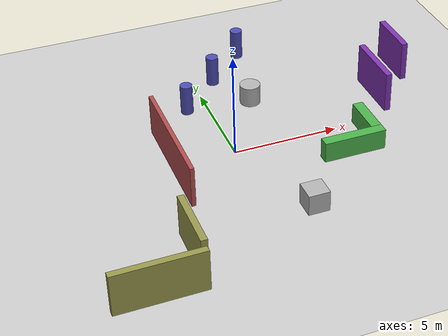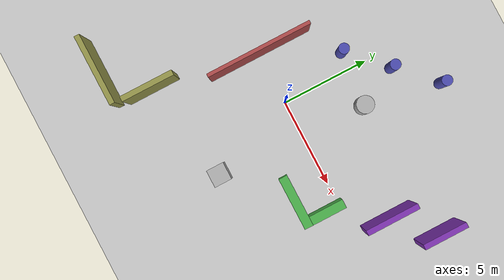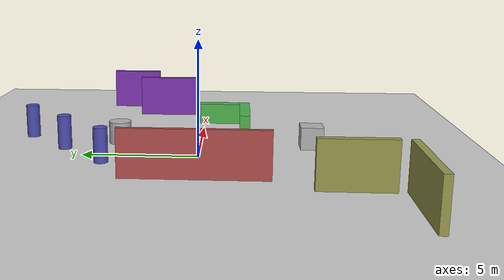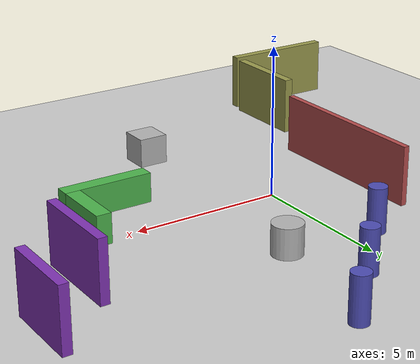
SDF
<sdf version='1.10'>
  <world name='empty'>
    <physics name='1ms' type='ignored'>
      <max_step_size>0.1</max_step_size>
      <real_time_factor>1</real_time_factor>
      <real_time_update_rate>50</real_time_update_rate>
    </physics>
    <plugin name='gz::sim::systems::Physics' filename='gz-sim-physics-system'/>
    <plugin name='gz::sim::systems::UserCommands' filename='gz-sim-user-commands-system'/>
    <plugin name='gz::sim::systems::SceneBroadcaster' filename='gz-sim-scene-broadcaster-system'/>
    <plugin name='gz::sim::systems::Imu' filename='gz-sim-imu-system'/>
    <plugin name='gz::sim::systems::Sensors' filename='gz-sim-sensors-system'>
      <render_engine>ogre2</render_engine>
    </plugin>
    <plugin name='gz::sim::systems::Contact' filename='gz-sim-contact-system'/>
    <gravity>0 0 -9.8000000000000007</gravity>
    <magnetic_field>5.5644999999999998e-06 2.2875799999999999e-05 -4.2388400000000002e-05</magnetic_field>
    <atmosphere type='adiabatic'/>
    <scene>
      <ambient>0.400000006 0.400000006 0.400000006 1</ambient>
      <background>0.699999988 0.699999988 0.699999988 1</background>
      <shadows>true</shadows>
    </scene>
    <model name='ground_plane'>
      <static>true</static>
      <link name='link'>
        <collision name='collision'>
          <geometry>
            <plane>
              <normal>0 0 1</normal>
              <size>100 100</size>
            </plane>
          </geometry>
          <surface>
            <friction>
              <ode/>
            </friction>
            <bounce/>
            <contact/>
          </surface>
        </collision>
        <visual name='visual'>
          <geometry>
            <plane>
              <normal>0 0 1</normal>
              <size>100 100</size>
            </plane>
          </geometry>
          <material>
            <ambient>0.800000012 0.800000012 0.800000012 1</ambient>
            <diffuse>0.800000012 0.800000012 0.800000012 1</diffuse>
            <specular>0.800000012 0.800000012 0.800000012 1</specular>
          </material>
        </visual>
        <pose>0 0 0 0 0 0</pose>
        <inertial>
          <pose>0 0 0 0 0 0</pose>
          <mass>1</mass>
          <inertia>
            <ixx>1</ixx>
            <ixy>0</ixy>
            <ixz>0</ixz>
            <iyy>1</iyy>
            <iyz>0</iyz>
            <izz>1</izz>
          </inertia>
        </inertial>
        <enable_wind>false</enable_wind>
      </link>
      <pose>0 0 0 0 0 0</pose>
      <self_collide>false</self_collide>
    </model>
    <model name='box'>
      <pose>1.8029219467110664 -4.9402323017846799 0.49999999990199806 6.2287739151293738e-22 9.3279666454713669e-22 -3.6315533669320137e-22</pose>
      <link name='box_link'>
        <inertial>
          <inertia>
            <ixx>16.666</ixx>
            <ixy>0</ixy>
            <ixz>0</ixz>
            <iyy>16.666</iyy>
            <iyz>0</iyz>
            <izz>16.666</izz>
          </inertia>
          <mass>100</mass>
          <pose>0 0 0 0 0 0</pose>
        </inertial>
        <collision name='box_collision'>
          <geometry>
            <box>
              <size>1 1 1</size>
            </box>
          </geometry>
          <surface>
            <friction>
              <ode/>
            </friction>
            <bounce/>
            <contact/>
          </surface>
        </collision>
        <visual name='box_visual'>
          <geometry>
            <box>
              <size>1 1 1</size>
            </box>
          </geometry>
          <material>
            <ambient>0.300000012 0.300000012 0.300000012 1</ambient>
            <diffuse>0.699999988 0.699999988 0.699999988 1</diffuse>
            <specular>1 1 1 1</specular>
          </material>
        </visual>
        <pose>0 0 0 0 0 0</pose>
        <enable_wind>false</enable_wind>
      </link>
      <static>false</static>
      <self_collide>false</self_collide>
    </model>
    <model name='cylinder'>
      <pose>2.1278173043812618 3.7029515542140965 0.49999942638036005 2.4289046005190011e-20 1.5754678275059134e-20 -9.0169543863959e-21</pose>
      <link name='cylinder_link'>
        <inertial>
          <inertia>
            <ixx>14.58</ixx>
            <ixy>0</ixy>
            <ixz>0</ixz>
            <iyy>14.58</iyy>
            <iyz>0</iyz>
            <izz>12.5</izz>
          </inertia>
          <mass>100</mass>
          <pose>0 0 0 0 0 0</pose>
        </inertial>
        <collision name='cylinder_collision'>
          <geometry>
            <cylinder>
              <radius>0.5</radius>
              <length>1</length>
            </cylinder>
          </geometry>
          <surface>
            <friction>
              <ode/>
            </friction>
            <bounce/>
            <contact/>
          </surface>
        </collision>
        <visual name='cylinder_visual'>
          <geometry>
            <cylinder>
              <radius>0.5</radius>
              <length>1</length>
            </cylinder>
          </geometry>
          <material>
            <ambient>0.300000012 0.300000012 0.300000012 1</ambient>
            <diffuse>0.699999988 0.699999988 0.699999988 1</diffuse>
            <specular>1 1 1 1</specular>
          </material>
        </visual>
        <pose>0 0 0 0 0 0</pose>
        <enable_wind>false</enable_wind>
      </link>
      <static>false</static>
      <self_collide>false</self_collide>
    </model>

    <!-- Wall obstacle creating a corridor -->
    <model name='wall1'>
      <pose>-3 0 1 0 0 0</pose>
      <link name='wall1_link'>
        <inertial>
          <inertia>
            <ixx>100</ixx>
            <ixy>0</ixy>
            <ixz>0</ixz>
            <iyy>100</iyy>
            <iyz>0</iyz>
            <izz>100</izz>
          </inertia>
          <mass>500</mass>
          <pose>0 0 0 0 0 0</pose>
        </inertial>
        <collision name='wall1_collision'>
          <geometry>
            <box>
              <size>0.2 6 2</size>
            </box>
          </geometry>
          <surface>
            <friction>
              <ode/>
            </friction>
            <bounce/>
            <contact/>
          </surface>
        </collision>
        <visual name='wall1_visual'>
          <geometry>
            <box>
              <size>0.2 6 2</size>
            </box>
          </geometry>
          <material>
            <ambient>0.7 0.3 0.3 1</ambient>
            <diffuse>0.7 0.3 0.3 1</diffuse>
            <specular>1 1 1 1</specular>
          </material>
        </visual>
        <pose>0 0 0 0 0 0</pose>
        <enable_wind>false</enable_wind>
      </link>
      <static>true</static>
      <self_collide>false</self_collide>
    </model>

    <!-- L-shaped obstacle -->
    <model name='L_obstacle'>
      <pose>5 -2 0.5 0 0 0</pose>
      <link name='L_obstacle_link'>
        <inertial>
          <inertia>
            <ixx>50</ixx>
            <ixy>0</ixy>
            <ixz>0</ixz>
            <iyy>50</iyy>
            <iyz>0</iyz>
            <izz>50</izz>
          </inertia>
          <mass>200</mass>
          <pose>0 0 0 0 0 0</pose>
        </inertial>
        <collision name='L_obstacle_collision'>
          <geometry>
            <box>
              <size>3 0.5 1</size>
            </box>
          </geometry>
          <surface>
            <friction>
              <ode/>
            </friction>
            <bounce/>
            <contact/>
          </surface>
        </collision>
        <visual name='L_obstacle_visual'>
          <geometry>
            <box>
              <size>3 0.5 1</size>
            </box>
          </geometry>
          <material>
            <ambient>0.3 0.7 0.3 1</ambient>
            <diffuse>0.3 0.7 0.3 1</diffuse>
            <specular>1 1 1 1</specular>
          </material>
        </visual>
        <pose>0 0 0 0 0 0</pose>
        <enable_wind>false</enable_wind>
      </link>
      <static>true</static>
      <self_collide>false</self_collide>
    </model>

    <!-- L-shaped obstacle part 2 -->
    <model name='L_obstacle2'>
      <pose>6.25 -0.75 0.5 0 0 0</pose>
      <link name='L_obstacle2_link'>
        <inertial>
          <inertia>
            <ixx>30</ixx>
            <ixy>0</ixy>
            <ixz>0</ixz>
            <iyy>30</iyy>
            <iyz>0</iyz>
            <izz>30</izz>
          </inertia>
          <mass>150</mass>
          <pose>0 0 0 0 0 0</pose>
        </inertial>
        <collision name='L_obstacle2_collision'>
          <geometry>
            <box>
              <size>0.5 2 1</size>
            </box>
          </geometry>
          <surface>
            <friction>
              <ode/>
            </friction>
            <bounce/>
            <contact/>
          </surface>
        </collision>
        <visual name='L_obstacle2_visual'>
          <geometry>
            <box>
              <size>0.5 2 1</size>
            </box>
          </geometry>
          <material>
            <ambient>0.3 0.7 0.3 1</ambient>
            <diffuse>0.3 0.7 0.3 1</diffuse>
            <specular>1 1 1 1</specular>
          </material>
        </visual>
        <pose>0 0 0 0 0 0</pose>
        <enable_wind>false</enable_wind>
      </link>
      <static>true</static>
      <self_collide>false</self_collide>
    </model>

    <!-- Scattered pillars creating a slalom course -->
    <model name='pillar1'>
      <pose>-1 4 0.75 0 0 0</pose>
      <link name='pillar1_link'>
        <inertial>
          <inertia>
            <ixx>25</ixx>
            <ixy>0</ixy>
            <ixz>0</ixz>
            <iyy>25</iyy>
            <iyz>0</iyz>
            <izz>5</izz>
          </inertia>
          <mass>150</mass>
          <pose>0 0 0 0 0 0</pose>
        </inertial>
        <collision name='pillar1_collision'>
          <geometry>
            <cylinder>
              <radius>0.3</radius>
              <length>1.5</length>
            </cylinder>
          </geometry>
          <surface>
            <friction>
              <ode/>
            </friction>
            <bounce/>
            <contact/>
          </surface>
        </collision>
        <visual name='pillar1_visual'>
          <geometry>
            <cylinder>
              <radius>0.3</radius>
              <length>1.5</length>
            </cylinder>
          </geometry>
          <material>
            <ambient>0.3 0.3 0.7 1</ambient>
            <diffuse>0.3 0.3 0.7 1</diffuse>
            <specular>1 1 1 1</specular>
          </material>
        </visual>
        <pose>0 0 0 0 0 0</pose>
        <enable_wind>false</enable_wind>
      </link>
      <static>true</static>
      <self_collide>false</self_collide>
    </model>

    <model name='pillar2'>
      <pose>1 6 0.75 0 0 0</pose>
      <link name='pillar2_link'>
        <inertial>
          <inertia>
            <ixx>25</ixx>
            <ixy>0</ixy>
            <ixz>0</ixz>
            <iyy>25</iyy>
            <iyz>0</iyz>
            <izz>5</izz>
          </inertia>
          <mass>150</mass>
          <pose>0 0 0 0 0 0</pose>
        </inertial>
        <collision name='pillar2_collision'>
          <geometry>
            <cylinder>
              <radius>0.3</radius>
              <length>1.5</length>
            </cylinder>
          </geometry>
          <surface>
            <friction>
              <ode/>
            </friction>
            <bounce/>
            <contact/>
          </surface>
        </collision>
        <visual name='pillar2_visual'>
          <geometry>
            <cylinder>
              <radius>0.3</radius>
              <length>1.5</length>
            </cylinder>
          </geometry>
          <material>
            <ambient>0.3 0.3 0.7 1</ambient>
            <diffuse>0.3 0.3 0.7 1</diffuse>
            <specular>1 1 1 1</specular>
          </material>
        </visual>
        <pose>0 0 0 0 0 0</pose>
        <enable_wind>false</enable_wind>
      </link>
      <static>true</static>
      <self_collide>false</self_collide>
    </model>

    <model name='pillar3'>
      <pose>3 8 0.75 0 0 0</pose>
      <link name='pillar3_link'>
        <inertial>
          <inertia>
            <ixx>25</ixx>
            <ixy>0</ixy>
            <ixz>0</ixz>
            <iyy>25</iyy>
            <iyz>0</iyz>
            <izz>5</izz>
          </inertia>
          <mass>150</mass>
          <pose>0 0 0 0 0 0</pose>
        </inertial>
        <collision name='pillar3_collision'>
          <geometry>
            <cylinder>
              <radius>0.3</radius>
              <length>1.5</length>
            </cylinder>
          </geometry>
          <surface>
            <friction>
              <ode/>
            </friction>
            <bounce/>
            <contact/>
          </surface>
        </collision>
        <visual name='pillar3_visual'>
          <geometry>
            <cylinder>
              <radius>0.3</radius>
              <length>1.5</length>
            </cylinder>
          </geometry>
          <material>
            <ambient>0.3 0.3 0.7 1</ambient>
            <diffuse>0.3 0.3 0.7 1</diffuse>
            <specular>1 1 1 1</specular>
          </material>
        </visual>
        <pose>0 0 0 0 0 0</pose>
        <enable_wind>false</enable_wind>
      </link>
      <static>true</static>
      <self_collide>false</self_collide>
    </model>

    <!-- Large rectangular obstacles creating rooms -->
    <model name='room_wall1'>
      <pose>-6 -8 1 0 0 0</pose>
      <link name='room_wall1_link'>
        <inertial>
          <inertia>
            <ixx>200</ixx>
            <ixy>0</ixy>
            <ixz>0</ixz>
            <iyy>200</iyy>
            <iyz>0</iyz>
            <izz>200</izz>
          </inertia>
          <mass>800</mass>
          <pose>0 0 0 0 0 0</pose>
        </inertial>
        <collision name='room_wall1_collision'>
          <geometry>
            <box>
              <size>4 0.3 2</size>
            </box>
          </geometry>
          <surface>
            <friction>
              <ode/>
            </friction>
            <bounce/>
            <contact/>
          </surface>
        </collision>
        <visual name='room_wall1_visual'>
          <geometry>
            <box>
              <size>4 0.3 2</size>
            </box>
          </geometry>
          <material>
            <ambient>0.6 0.6 0.3 1</ambient>
            <diffuse>0.6 0.6 0.3 1</diffuse>
            <specular>1 1 1 1</specular>
          </material>
        </visual>
        <pose>0 0 0 0 0 0</pose>
        <enable_wind>false</enable_wind>
      </link>
      <static>true</static>
      <self_collide>false</self_collide>
    </model>

    <model name='room_wall2'>
      <pose>-4 -6 1 0 0 1.57</pose>
      <link name='room_wall2_link'>
        <inertial>
          <inertia>
            <ixx>100</ixx>
            <ixy>0</ixy>
            <ixz>0</ixz>
            <iyy>100</iyy>
            <iyz>0</iyz>
            <izz>100</izz>
          </inertia>
          <mass>600</mass>
          <pose>0 0 0 0 0 0</pose>
        </inertial>
        <collision name='room_wall2_collision'>
          <geometry>
            <box>
              <size>3 0.3 2</size>
            </box>
          </geometry>
          <surface>
            <friction>
              <ode/>
            </friction>
            <bounce/>
            <contact/>
          </surface>
        </collision>
        <visual name='room_wall2_visual'>
          <geometry>
            <box>
              <size>3 0.3 2</size>
            </box>
          </geometry>
          <material>
            <ambient>0.6 0.6 0.3 1</ambient>
            <diffuse>0.6 0.6 0.3 1</diffuse>
            <specular>1 1 1 1</specular>
          </material>
        </visual>
        <pose>0 0 0 0 0 0</pose>
        <enable_wind>false</enable_wind>
      </link>
      <static>true</static>
      <self_collide>false</self_collide>
    </model>

    <!-- Maze-like narrow passage -->
    <model name='maze_wall1'>
      <pose>8 2 1 0 0 0</pose>
      <link name='maze_wall1_link'>
        <inertial>
          <inertia>
            <ixx>80</ixx>
            <ixy>0</ixy>
            <ixz>0</ixz>
            <iyy>80</iyy>
            <iyz>0</iyz>
            <izz>80</izz>
          </inertia>
          <mass>400</mass>
          <pose>0 0 0 0 0 0</pose>
        </inertial>
        <collision name='maze_wall1_collision'>
          <geometry>
            <box>
              <size>0.3 3 2</size>
            </box>
          </geometry>
          <surface>
            <friction>
              <ode/>
            </friction>
            <bounce/>
            <contact/>
          </surface>
        </collision>
        <visual name='maze_wall1_visual'>
          <geometry>
            <box>
              <size>0.3 3 2</size>
            </box>
          </geometry>
          <material>
            <ambient>0.5 0.2 0.7 1</ambient>
            <diffuse>0.5 0.2 0.7 1</diffuse>
            <specular>1 1 1 1</specular>
          </material>
        </visual>
        <pose>0 0 0 0 0 0</pose>
        <enable_wind>false</enable_wind>
      </link>
      <static>true</static>
      <self_collide>false</self_collide>
    </model>

    <model name='maze_wall2'>
      <pose>10 4 1 0 0 1.57</pose>
      <link name='maze_wall2_link'>
        <inertial>
          <inertia>
            <ixx>60</ixx>
            <ixy>0</ixy>
            <ixz>0</ixz>
            <iyy>60</iyy>
            <iyz>0</iyz>
            <izz>60</izz>
          </inertia>
          <mass>300</mass>
          <pose>0 0 0 0 0 0</pose>
        </inertial>
        <collision name='maze_wall2_collision'>
          <geometry>
            <box>
              <size>2.5 0.3 2</size>
            </box>
          </geometry>
          <surface>
            <friction>
              <ode/>
            </friction>
            <bounce/>
            <contact/>
          </surface>
        </collision>
        <visual name='maze_wall2_visual'>
          <geometry>
            <box>
              <size>2.5 0.3 2</size>
            </box>
          </geometry>
          <material>
            <ambient>0.5 0.2 0.7 1</ambient>
            <diffuse>0.5 0.2 0.7 1</diffuse>
            <specular>1 1 1 1</specular>
          </material>
        </visual>
        <pose>0 0 0 0 0 0</pose>
        <enable_wind>false</enable_wind>
      </link>
      <static>true</static>
      <self_collide>false</self_collide>
    </model>

    <light name='sun' type='directional'>
      <pose>0 0 10 0 0 0</pose>
      <cast_shadows>true</cast_shadows>
      <intensity>1</intensity>
      <direction>-0.5 0.10000000000000001 -0.90000000000000002</direction>
      <diffuse>0.800000012 0.800000012 0.800000012 1</diffuse>
      <specular>0.200000003 0.200000003 0.200000003 1</specular>
      <attenuation>
        <range>1000</range>
        <linear>0.01</linear>
        <constant>0.90000000000000002</constant>
        <quadratic>0.001</quadratic>
      </attenuation>
      <spot>
        <inner_angle>0</inner_angle>
        <outer_angle>0</outer_angle>
        <falloff>0</falloff>
      </spot>
    </light>
  </world>
</sdf>
